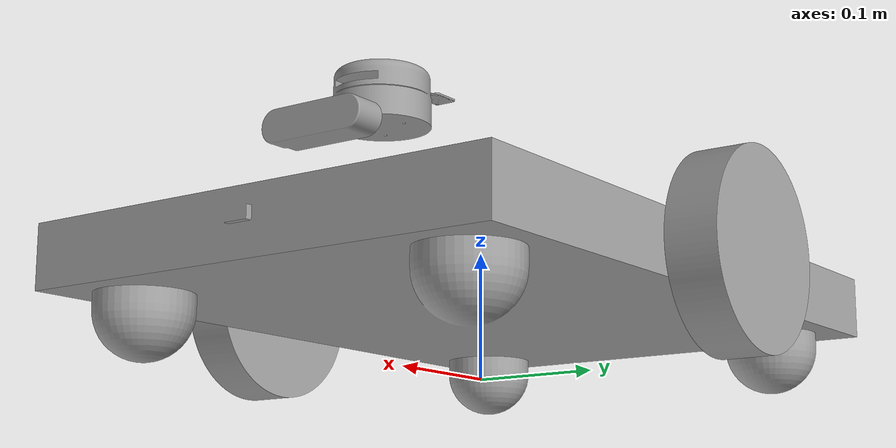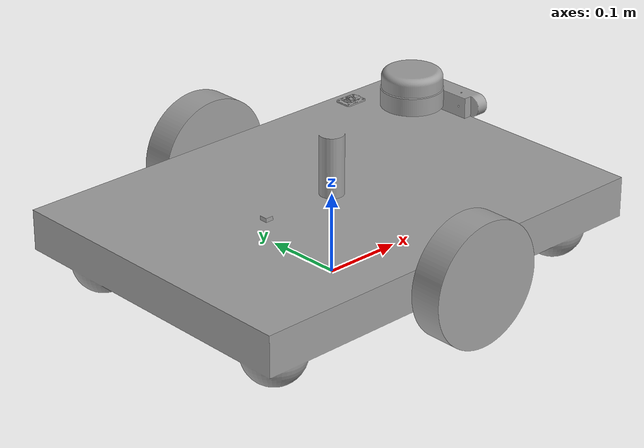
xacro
<?xml version="1.0" ?>
<robot name="cube" xmlns:xacro="http://www.ros.org/wiki/xacro">

<xacro:include filename="$(find cube_description)/urdf/materials.xacro" />
<xacro:include filename="$(find cube_description)/urdf/cube.trans" />
<xacro:include filename="$(find cube_description)/urdf/gazebo.xacro" />

<link name="base_footprint">
  <visual>
    <origin xyz="0 0 0" rpy="0 0 0" />
    <geometry>
      <box size="0.0 0.0 0.0" />
    </geometry>
  </visual>
</link>

<joint name="fixed_base_joint" type="fixed">
  <parent link="base_footprint" />
  <child link="base_link" />
  <origin xyz="0 0 0" rpy="0 0 0" />
</joint>

<link name="base_link">
  <inertial>
    <origin xyz="1.9410706945315624e-05 7.449572592086158e-17 0.07325173847508996" rpy="0 0 0"/>
    <mass value="92.00463500203875"/>
    <inertia ixx="1.293901" iyy="2.461346" izz="3.694097" ixy="-0.0" iyz="0.0" ixz="-4e-06"/>
  </inertial>
  <visual>
    <origin xyz="0 0 0" rpy="0 0 0"/>
    <geometry>
      <mesh filename="package://cube_description/meshes/base_link.stl" scale="0.001 0.001 0.001"/>
    </geometry>
    <material name="steel_satin"/>
  </visual>
  <collision>
    <origin xyz="0 0 0" rpy="0 0 0"/>
    <geometry>
      <mesh filename="package://cube_description/meshes/base_link.stl" scale="0.001 0.001 0.001"/>
    </geometry>
  </collision>
</link>

<link name="imu_v1_1">
  <inertial>
    <origin xyz="0.0 0.0 0.0050000000000000044" rpy="0 0 0"/>
    <mass value="0.07064999999999999"/>
    <inertia ixx="6e-06" iyy="6e-06" izz="1.1e-05" ixy="0.0" iyz="0.0" ixz="0.0"/>
  </inertial>
  <visual>
    <origin xyz="0.1 -0.0 -0.1055" rpy="0 0 0"/>
    <geometry>
      <mesh filename="package://cube_description/meshes/imu_v1_1.stl" scale="0.001 0.001 0.001"/>
    </geometry>
    <material name="steel_satin"/>
  </visual>
  <collision>
    <origin xyz="0.1 -0.0 -0.1055" rpy="0 0 0"/>
    <geometry>
      <mesh filename="package://cube_description/meshes/imu_v1_1.stl" scale="0.001 0.001 0.001"/>
    </geometry>
  </collision>
</link>

<link name="depth_camera_v1_1">
  <inertial>
    <origin xyz="0.006500000000000061 -3.011479954295737e-17 0.0" rpy="0 0 0"/>
    <mass value="0.06123000182479622"/>
    <inertia ixx="1.9e-05" iyy="1e-06" izz="1.9e-05" ixy="0.0" iyz="0.0" ixz="0.0"/>
  </inertial>
  <visual>
    <origin xyz="-0.28 0.0 -0.0805" rpy="0 0 0"/>
    <geometry>
      <mesh filename="package://cube_description/meshes/depth_camera_v1_1.stl" scale="0.001 0.001 0.001"/>
    </geometry>
    <material name="steel_satin"/>
  </visual>
  <collision>
    <origin xyz="-0.28 0.0 -0.0805" rpy="0 0 0"/>
    <geometry>
      <mesh filename="package://cube_description/meshes/depth_camera_v1_1.stl" scale="0.001 0.001 0.001"/>
    </geometry>
  </collision>
</link>

<link name="lidar_v1_1">
  <inertial>
    <origin xyz="7.385233546074017e-18 0.0 0.010000000000000009" rpy="0 0 0"/>
    <mass value="0.6042068071016569"/>
    <inertia ixx="0.000205" iyy="0.000205" izz="0.00037" ixy="0.0" iyz="0.0" ixz="0.0"/>
  </inertial>
  <visual>
    <origin xyz="-0.0 -0.0 -0.1755" rpy="0 0 0"/>
    <geometry>
      <mesh filename="package://cube_description/meshes/lidar_v1_1.stl" scale="0.001 0.001 0.001"/>
    </geometry>
    <material name="steel_satin"/>
  </visual>
  <collision>
    <origin xyz="-0.0 -0.0 -0.1755" rpy="0 0 0"/>
    <geometry>
      <mesh filename="package://cube_description/meshes/lidar_v1_1.stl" scale="0.001 0.001 0.001"/>
    </geometry>
  </collision>
</link>

<link name="right_wheel_v3_1">
  <inertial>
    <origin xyz="1.269686219929395e-17 -0.020000000000000018 0.0" rpy="0 0 0"/>
    <mass value="5.623069146418319"/>
    <inertia ixx="0.008763" iyy="0.016026" izz="0.008763" ixy="0.0" iyz="0.0" ixz="-0.0"/>
  </inertial>
  <visual>
    <origin xyz="-0.0 0.205 -0.0755" rpy="0 0 0"/>
    <geometry>
      <mesh filename="package://cube_description/meshes/right_wheel_v3_1.stl" scale="0.001 0.001 0.001"/>
    </geometry>
    <material name="steel_satin"/>
  </visual>
  <collision>
    <origin xyz="-0.0 0.205 -0.0755" rpy="0 0 0"/>
    <geometry>
      <mesh filename="package://cube_description/meshes/right_wheel_v3_1.stl" scale="0.001 0.001 0.001"/>
    </geometry>
  </collision>
</link>

<link name="left_wheel_v3_1">
  <inertial>
    <origin xyz="1.269686219929395e-17 0.020000000000000018 0.0" rpy="0 0 0"/>
    <mass value="5.623069146418319"/>
    <inertia ixx="0.008763" iyy="0.016026" izz="0.008763" ixy="-0.0" iyz="0.0" ixz="-0.0"/>
  </inertial>
  <visual>
    <origin xyz="-0.0 -0.205 -0.0755" rpy="0 0 0"/>
    <geometry>
      <mesh filename="package://cube_description/meshes/left_wheel_v3_1.stl" scale="0.001 0.001 0.001"/>
    </geometry>
    <material name="steel_satin"/>
  </visual>
  <collision>
    <origin xyz="-0.0 -0.205 -0.0755" rpy="0 0 0"/>
    <geometry>
      <mesh filename="package://cube_description/meshes/left_wheel_v3_1.stl" scale="0.001 0.001 0.001"/>
    </geometry>
  </collision>
</link>

<joint name="Rigid 1" type="fixed">
  <origin xyz="-0.1 0.0 0.1055" rpy="0 0 0"/>
  <parent link="base_link"/>
  <child link="imu_v1_1"/>
</joint>

<joint name="Rigid 3" type="fixed">
  <origin xyz="0.28 0.0 0.0805" rpy="0 0 0"/>
  <parent link="base_link"/>
  <child link="depth_camera_v1_1"/>
</joint>

<joint name="Rigid 6" type="fixed">
  <origin xyz="0.0 0.0 0.1755" rpy="0 0 0"/>
  <parent link="base_link"/>
  <child link="lidar_v1_1"/>
</joint>

<joint name="Revolute 9" type="continuous">
  <origin xyz="0.0 -0.205 0.0755" rpy="0 0 0"/>
  <parent link="base_footprint"/>
  <child link="right_wheel_v3_1"/>
  <axis xyz="0.0 1.0 0.0"/>
</joint>

<joint name="Revolute 10" type="continuous">
  <origin xyz="0.0 0.205 0.0755" rpy="0 0 0"/>
  <parent link="base_footprint"/>
  <child link="left_wheel_v3_1"/>
  <axis xyz="0.0 1.0 0.0"/>
</joint>

</robot>

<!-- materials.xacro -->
<robot name="cube" xmlns:xacro="http://www.ros.org/wiki/xacro" >

<material name="silver_default">
  <color rgba="0.700 0.700 0.700 1.000"/>
</material>
<material name="opaque160160160">
  <color rgba="0.6274509803921569 0.6274509803921569 0.6274509803921569 1.0"/>
</material>
<material name="steel_satin">
  <color rgba="0.6274509803921569 0.6274509803921569 0.6274509803921569 1.0"/>
</material>
<material name="opaque262626">
  <color rgba="0.10196078431372549 0.10196078431372549 0.10196078431372549 1.0"/>
</material>

</robot>

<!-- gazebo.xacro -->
<robot xmlns:xacro="http://www.ros.org/wiki/xacro">

  <xacro:property name="body_color" value="Gazebo/Silver" />
  <xacro:property name="lidar_color" value="Gazebo/Blue" />

  <gazebo reference="base_link">
    <material>${body_color}</material>
    <mu1>0.1</mu1>
    <mu2>0.1</mu2>
    <selfCollide>true</selfCollide>
    <gravity>true</gravity>
  </gazebo>

  <gazebo reference="imu_v1_1">
    <material>${body_color}</material>
    <mu1>0.2</mu1>
    <mu2>0.2</mu2>
    <selfCollide>true</selfCollide>
  </gazebo>

  <gazebo reference="lidar_v1_1">
    <material>${lidar_color}</material>
    <mu1>0.2</mu1>
    <mu2>0.2</mu2>
    <selfCollide>true</selfCollide>
  </gazebo>

  <gazebo reference="depth_camera_v1_1">
    <material>${body_color}</material>
    <mu1>0.2</mu1>
    <mu2>0.2</mu2>
    <selfCollide>true</selfCollide>
  </gazebo>

  <gazebo reference="left_wheel_v1_1">
    <material>${body_color}</material>
    <mu1>1000</mu1>
    <mu2>1000</mu2>
    <selfCollide>true</selfCollide>
  </gazebo>

  <gazebo reference="right_wheel_v1_1">
    <material>${body_color}</material>
    <mu1>1000</mu1>
    <mu2>1000</mu2>
    <selfCollide>true</selfCollide>
  </gazebo>

  <gazebo>
    <plugin name="diff_drive_control" filename="libgazebo_ros_diff_drive.so">

      <!-- Update rate in Hz -->
      <update_rate>50</update_rate>

      <!-- wheels -->
      <left_joint>Revolute 4</left_joint>
      <right_joint>Revolute 5</right_joint>

      <!-- kinematics -->
      <wheel_separation>0.344</wheel_separation>
      <wheel_diameter>0.16</wheel_diameter>

      <!-- input -->
      <command_topic>cmd_vel</command_topic>

      <!-- output -->
      <publish_odom>true</publish_odom>
      <publish_odom_tf>true</publish_odom_tf>
      <publish_wheel_tf>true</publish_wheel_tf>

      <odometry_topic>odom</odometry_topic>
      <odometry_frame>odom</odometry_frame>
      <robot_base_frame>base_footprint</robot_base_frame>

    </plugin>
  </gazebo>

  <gazebo reference="imu_v1_1">
    <gravity>true</gravity>
    <sensor name="imu_v1_1" type="imu">
      <always_on>true</always_on>
      <update_rate>30</update_rate>
      <visualize>true</visualize>
      <plugin name="my_imu_plugin" filename="libgazebo_ros_imu_sensor.so">
        <ros>
          <remapping>~/out:=imu</remapping>
        </ros>
        <frame_name>imu_v1_1</frame_name>
      </plugin>
    </sensor>
  </gazebo>

  <gazebo reference="lidar_v1_1">
    <sensor type="ray" name="head_hokuyo_sensor">
      <pose>0 0 0 0 0 0</pose>
      <visualize>false</visualize>
      <update_rate>30</update_rate>
      <ray>
        <scan>
          <horizontal>
            <samples>300</samples>
            <resolution>1</resolution>
            <min_angle>-3.14</min_angle>
            <max_angle>3.14</max_angle>
          </horizontal>
        </scan>
        <range>
          <min>0.10</min>
          <max>30.0</max>
          <resolution>0.01</resolution>
        </range>
        <noise>
          <type>gaussian</type>
          <mean>0.0</mean>
          <stddev>0.01</stddev>
        </noise>
      </ray>
      <plugin name="my_ray_sensor_plugin" filename="libgazebo_ros_ray_sensor.so">
        <ros>
          <!-- Configure namespace and remap to publish to /ray/pointcloud2 -->
          <remapping>~/out:=scan</remapping>
        </ros>
        <!-- Output as a PointCloud2, see above for other types -->
        <output_type>sensor_msgs/LaserScan</output_type>
        <!-- Clip intensity values so all are above 100, optional -->
        <min_intensity>100.0</min_intensity>
        <!-- Frame id for header of output, defaults to sensor's parent link name -->
        <frame_name>lidar_v1_1</frame_name>
      </plugin>
    </sensor>
  </gazebo>

  <gazebo reference="depth_camera_v1_1">
    <sensor name="camera" type="depth">
      <pose> 0 0 0 0 0 0</pose>
      <visualize>true</visualize>
      <update_rate>60.0</update_rate>
      <camera name="depth_camera_v1_1">
        <horizontal_fov>1.047198</horizontal_fov>
        <image>
          <width>640</width>
          <height>480</height>
          <format>R8G8B8</format>
        </image>
        <clip>
          <near>0.05</near>
          <far>10</far>
        </clip>
      </camera>
      <plugin name="depth_camera_controller" filename="libgazebo_ros_camera.so">
        <ros>
          <remapping>/camera/camera_info:=/camera/rgb/camera_info</remapping>
          <remapping>/camera/image_raw:=/camera/rgb/image_rect_color</remapping>
          <remapping>/camera/depth/image_raw:=/camera/depth_registered/image_raw</remapping>
        </ros>
        <baseline>0.2</baseline>
        <alwaysOn>true</alwaysOn>
        <updateRate>0.0</updateRate>
        <frame_name>depth_camera_v1_1</frame_name>
        <pointCloudCutoff>0.2</pointCloudCutoff>
        <pointCloudCutoffMax>10.0</pointCloudCutoffMax>
        <distortionK1>0</distortionK1>
        <distortionK2>0</distortionK2>
        <distortionK3>0</distortionK3>
        <distortionT1>0</distortionT1>
        <distortionT2>0</distortionT2>
        <CxPrime>0</CxPrime>
        <Cx>0</Cx>
        <Cy>0</Cy>
        <focalLength>0</focalLength>
        <hackBaseline>0</hackBaseline>
      </plugin>
    </sensor>
  </gazebo>

</robot>
